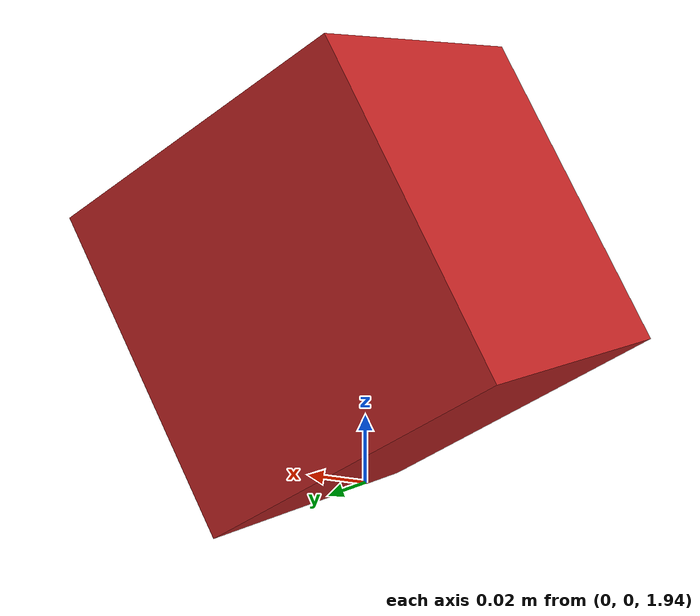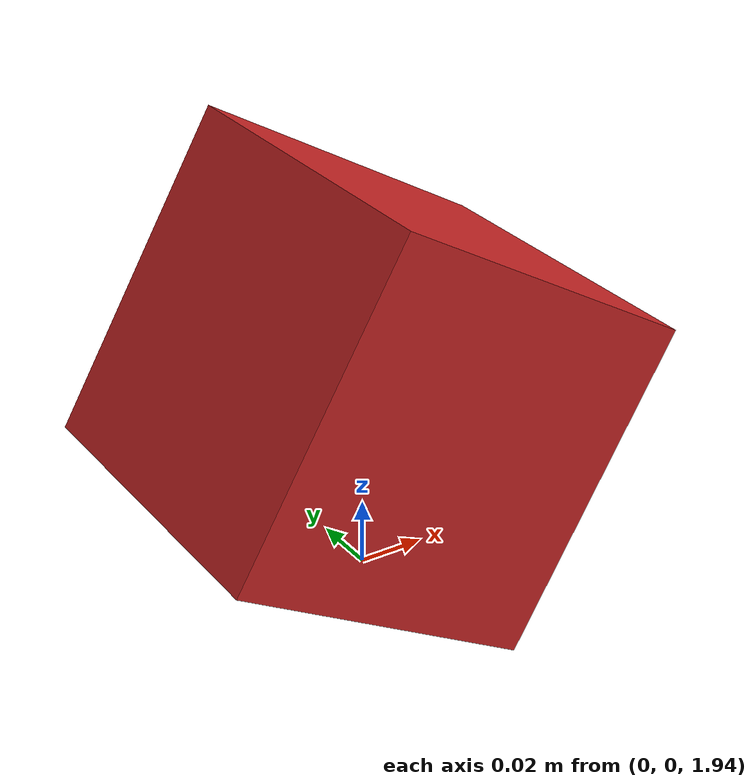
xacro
<?xml version="1.0"?>
<!-- Revolute-Revolute Manipulator -->
<robot name="camera" xmlns:xacro="http://www.ros.org/wiki/xacro">

<!-- Constants for robot dimensions -->
  <xacro:property name="PI" value="3.1415926535897931"/>
  <xacro:property name="camera_link" value="0.1" /> <!-- Size of square 'camera' box -->

  <!-- Import all Gazebo-customization elements, including Gazebo colors -->
  <xacro:include filename="$(find nerf_simulation)/urdf/camera.gazebo" />
  <!-- Import Rviz colors -->
  <xacro:include filename="$(find nerf_simulation)/urdf/materials.xacro" />

  <!-- Used for fixing robot to Gazebo 'base_link' -->
  <link name="world"/>

  <joint name="camera_joint" type="fixed">
    <axis xyz="0 0 0" />
    <origin xyz="0 0 2" rpy="0 ${PI/6} 0"/>
    <parent link="world"/>
    <child link="camera_link"/>
  </joint>

  <!-- Camera -->
  <link name="camera_link">
    <collision>
      <origin xyz="0 0 0" rpy="0 0 0"/>
      <geometry>
	<box size="${camera_link} ${camera_link} ${camera_link}"/>
      </geometry>
    </collision>

    <visual>
      <origin xyz="0 0 0" rpy="0 0 0"/>
      <geometry>
	<box size="${camera_link} ${camera_link} ${camera_link}"/>
      </geometry>
      <material name="red"/>
    </visual>

    <inertial>
      <mass value="1e-5" />
      <origin xyz="0 0 0" rpy="0 0 0"/>
      <inertia ixx="1e-6" ixy="0" ixz="0" iyy="1e-6" iyz="0" izz="1e-6" />
    </inertial>
  </link>

  <!-- generate an optical frame http://www.ros.org/reps/rep-0103.html#suffix-frames
      so that ros and opencv can operate on the camera frame correctly -->
  <joint name="camera_optical_joint" type="fixed">
    <!-- these values have to be these values otherwise the gazebo camera image
        won't be aligned properly with the frame it is supposedly originating from -->
    <origin xyz="0 0 0" rpy="0 0 0"/>
    <parent link="camera_link"/>
    <child link="camera_link_optical"/>
  </joint>

  <link name="camera_link_optical">
  </link>

</robot>
